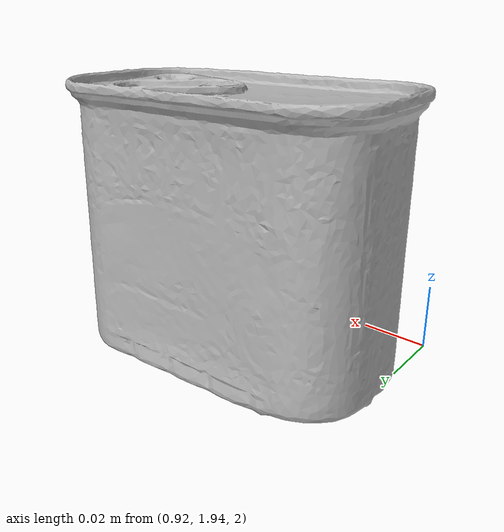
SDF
<?xml version="1.0" ?>
<!--
This SDF file was automatically generated using a template modified
and authored by Adwait Naik. The moment of interia is not supposed to be changed.
-->
<sdf version="1.7">
    <model name="potted_meat_can">
      <pose>1.0 2.0 2.0 0 0 0</pose>
      <link name="link">
        <inertial>
          <inertia>
           <ixx>4.287366513749583e-07</ixx>
           <ixy>-2.020309373055796e-23</ixy>
           <ixz>-4.823406226388371e-24</ixz>
           <iyy>3.228086963634995e-07</iyy>
           <iyz>-5.302497140952807e-25</iyz>
           <izz>2.4925393166117206e-07</izz>
          </inertia>
          <mass>0.0003541315255998319</mass>
        </inertial>
        <collision name="collision">
          <geometry>
          	<mesh>
             <uri>textured.dae</uri>
            </mesh>
          </geometry>
        </collision>

        <visual name="visual">
          <geometry>
          	<mesh>
            <uri>textured.dae</uri>
	        </mesh>
          </geometry>
        </visual>
      </link>
    </model>
</sdf>
